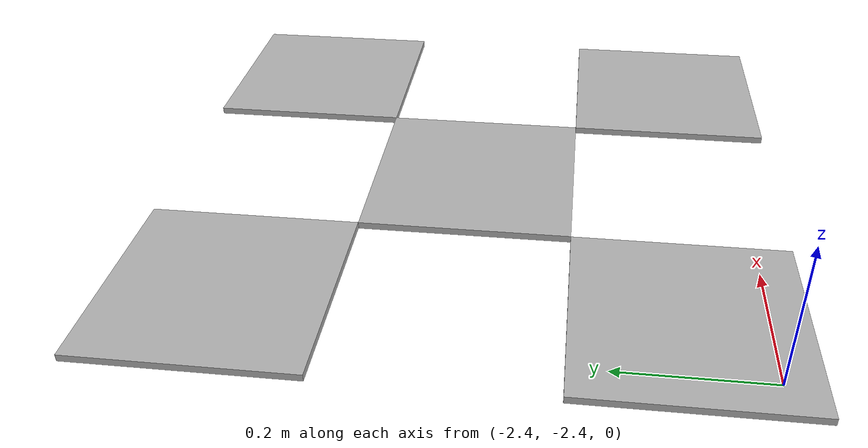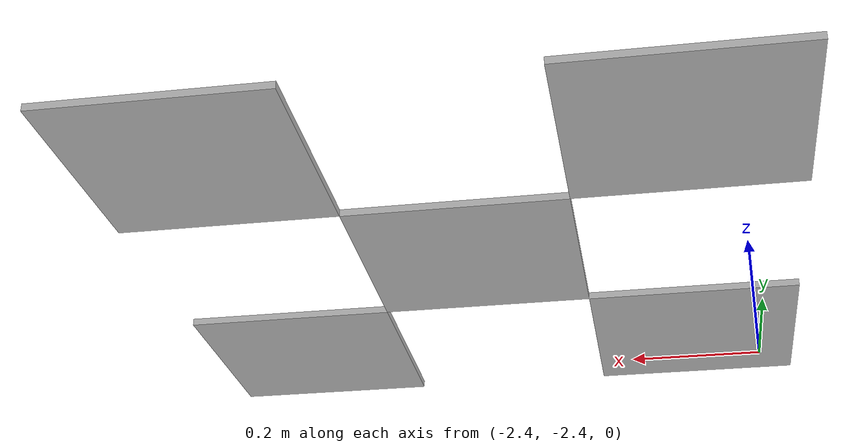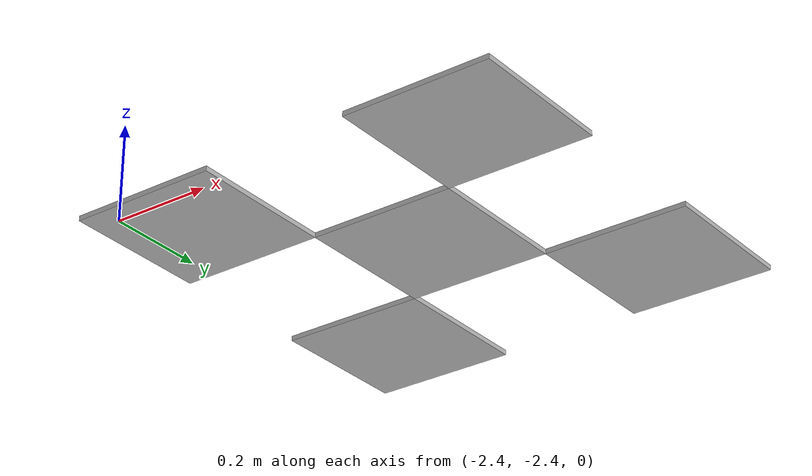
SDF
<?xml version="1.0" ?>
<sdf version="1.4">

	<model name='tag_bundle7'>

		<static>True</static>

		<link name="tag_30">

			<pose>-2 -2 0 0 1.5713 1.5713</pose>

			<inertial>
	        	<mass>0.1</mass>

	        	<inertia>
					<ixx>0.0166667</ixx>
					<ixy>0</ixy>
					<ixz>0</ixz>
					<iyy>0.0166667</iyy>
					<iyz>0</iyz>
					<izz>0.0166667</izz>
        		</inertia>

        		<pose frame=''>0 0 0 0 -0 0</pose>
      		</inertial>

			<pose frame=''>0 0 0 0 -0 0</pose>
			<gravity>1</gravity>
			<self_collide>0</self_collide>
			<kinematic>0</kinematic>
			<enable_wind>0</enable_wind>

			<visual name='visual_30'>
				<pose frame=''>0 0 0 0 -0 0</pose>

		        <geometry>
		        	<box>
		        	<size>0.01 0.3 0.3</size>
		        	</box>
		        </geometry>

		        <material>
		        	<lighting>0</lighting>

		        	<script>
		        		<uri>models://media/materials/scripts/Apriltag.material</uri>
		        		<name>Apriltag/id30</name>
		          	</script>

		        	<shader type='vertex'>
		        		<normal_map>__default__</normal_map>
		          	</shader>

		        	<ambient>0.3 0.3 0.3 1</ambient>
		        	<diffuse>0.7 0.7 0.7 1</diffuse>
		        	<specular>0.01 0.01 0.01 1</specular>
		        	<emissive>0 0 0 1</emissive>
		        </material>

		        <transparency>0</transparency>
		        <cast_shadows>1</cast_shadows>
			</visual>

			<collision name='collision_30'>
				<laser_retro>0</laser_retro>
        		<max_contacts>10</max_contacts>
        		<pose frame=''>0 0 0 0 -0 0</pose>

		        <geometry>
		        	<box>
		        		<size>0.01 0.3 0.3</size>
		        	</box>
		        </geometry>

		        <surface>
		        	<friction>
		            	<ode>
		            		<mu>1</mu>
		            		<mu2>1</mu2>
		            		<fdir1>0 0 0</fdir1>
		            		<slip1>0</slip1>
		            		<slip2>0</slip2>
		            	</ode>

		           		<torsional>
		            		<coefficient>1</coefficient>
	            			<patch_radius>0</patch_radius>
	            			<surface_radius>0</surface_radius>
	            			<use_patch_radius>1</use_patch_radius>

	            			<ode>
		                		<slip>0</slip>
		              		</ode>
		            	</torsional>
		          	</friction>

		        	<bounce>
		            	<restitution_coefficient>0</restitution_coefficient>
		            	<threshold>1e+06</threshold>
		        	</bounce>

		        	<contact>
		            	<collide_without_contact>0</collide_without_contact>
		            	<collide_without_contact_bitmask>1</collide_without_contact_bitmask>
		            	<collide_bitmask>1</collide_bitmask>

		            	<ode>
		            		<soft_cfm>0</soft_cfm>
		            		<soft_erp>0.2</soft_erp>
		            		<kp>1e+13</kp>
		            		<kd>1</kd>
		            		<max_vel>0.01</max_vel>
		            		<min_depth>0</min_depth>
		            	</ode>

			            <bullet>
			            	<split_impulse>1</split_impulse>
			            	<split_impulse_penetration_threshold>-0.01</split_impulse_penetration_threshold>
			            	<soft_cfm>0</soft_cfm>
			            	<soft_erp>0.2</soft_erp>
			            	<kp>1e+13</kp>
			            	<kd>1</kd>
			            </bullet>
		        	</contact>
		        </surface>
		    </collision>
		</link>

		<link name="tag_31">

			<pose>-1.7 -2.3 0 0 1.5713 1.5713</pose>

			<inertial>
	        	<mass>0.1</mass>

	        	<inertia>
					<ixx>0.0166667</ixx>
					<ixy>0</ixy>
					<ixz>0</ixz>
					<iyy>0.0166667</iyy>
					<iyz>0</iyz>
					<izz>0.0166667</izz>
        		</inertia>

        		<pose frame=''>0 0 0 0 -0 0</pose>
      		</inertial>

			<pose frame=''>0 0 0 0 -0 0</pose>
			<gravity>1</gravity>
			<self_collide>0</self_collide>
			<kinematic>0</kinematic>
			<enable_wind>0</enable_wind>

 			<visual name='visual_31'>
				<pose frame=''>0 0 0 0 -0 0</pose>

		        <geometry>
		        	<box>
		        	<size>0.01 0.3 0.3</size>
		        	</box>
		        </geometry>

		        <material>
		        	<lighting>0</lighting>

		        	<script>
		        		<uri>models://media/materials/scripts/Apriltag.material</uri>
		        		<name>Apriltag/id31</name>
		          	</script>

		        	<shader type='vertex'>
		        		<normal_map>__default__</normal_map>
		          	</shader>

		        	<ambient>0.3 0.3 0.3 1</ambient>
		        	<diffuse>0.7 0.7 0.7 1</diffuse>
		        	<specular>0.01 0.01 0.01 1</specular>
		        	<emissive>0 0 0 1</emissive>
		        </material>

		        <transparency>0</transparency>
		        <cast_shadows>1</cast_shadows>
			</visual>

			<collision name='collision_31'>
				<laser_retro>0</laser_retro>
        		<max_contacts>10</max_contacts>
        		<pose frame=''>0 0 0 0 -0 0</pose>

		        <geometry>
		        	<box>
		        		<size>0.01 0.3 0.3</size>
		        	</box>
		        </geometry>

		        <surface>
		        	<friction>
		            	<ode>
		            		<mu>1</mu>
		            		<mu2>1</mu2>
		            		<fdir1>0 0 0</fdir1>
		            		<slip1>0</slip1>
		            		<slip2>0</slip2>
		            	</ode>

		           		<torsional>
		            		<coefficient>1</coefficient>
	            			<patch_radius>0</patch_radius>
	            			<surface_radius>0</surface_radius>
	            			<use_patch_radius>1</use_patch_radius>

	            			<ode>
		                		<slip>0</slip>
		              		</ode>
		            	</torsional>
		          	</friction>

		        	<bounce>
		            	<restitution_coefficient>0</restitution_coefficient>
		            	<threshold>1e+06</threshold>
		        	</bounce>

		        	<contact>
		            	<collide_without_contact>0</collide_without_contact>
		            	<collide_without_contact_bitmask>1</collide_without_contact_bitmask>
		            	<collide_bitmask>1</collide_bitmask>

		            	<ode>
		            		<soft_cfm>0</soft_cfm>
		            		<soft_erp>0.2</soft_erp>
		            		<kp>1e+13</kp>
		            		<kd>1</kd>
		            		<max_vel>0.01</max_vel>
		            		<min_depth>0</min_depth>
		            	</ode>

			            <bullet>
			            	<split_impulse>1</split_impulse>
			            	<split_impulse_penetration_threshold>-0.01</split_impulse_penetration_threshold>
			            	<soft_cfm>0</soft_cfm>
			            	<soft_erp>0.2</soft_erp>
			            	<kp>1e+13</kp>
			            	<kd>1</kd>
			            </bullet>
		        	</contact>
		        </surface>
		    </collision>
		</link>

		<link name="tag_32">

			<pose>-1.7 -1.7 0 0 1.5713 1.5713</pose>

			<inertial>
	        	<mass>0.1</mass>

	        	<inertia>
					<ixx>0.0166667</ixx>
					<ixy>0</ixy>
					<ixz>0</ixz>
					<iyy>0.0166667</iyy>
					<iyz>0</iyz>
					<izz>0.0166667</izz>
        		</inertia>

        		<pose frame=''>0 0 0 0 -0 0</pose>
      		</inertial>

			<pose frame=''>0 0 0 0 -0 0</pose>
			<gravity>1</gravity>
			<self_collide>0</self_collide>
			<kinematic>0</kinematic>
			<enable_wind>0</enable_wind>

			<visual name='visual_32'>
				<pose frame=''>0 0 0 0 -0 0</pose>

		        <geometry>
		        	<box>
		        	<size>0.01 0.3 0.3</size>
		        	</box>
		        </geometry>

		        <material>
		        	<lighting>0</lighting>

		        	<script>
		        		<uri>models://media/materials/scripts/Apriltag.material</uri>
		        		<name>Apriltag/id32</name>
		          	</script>

		        	<shader type='vertex'>
		        		<normal_map>__default__</normal_map>
		          	</shader>

		        	<ambient>0.3 0.3 0.3 1</ambient>
		        	<diffuse>0.7 0.7 0.7 1</diffuse>
		        	<specular>0.01 0.01 0.01 1</specular>
		        	<emissive>0 0 0 1</emissive>
		        </material>

		        <transparency>0</transparency>
		        <cast_shadows>1</cast_shadows>
			</visual>

			<collision name='collision_32'>
				<laser_retro>0</laser_retro>
        		<max_contacts>10</max_contacts>
        		<pose frame=''>0 0 0 0 -0 0</pose>

		        <geometry>
		        	<box>
		        		<size>0.01 0.3 0.3</size>
		        	</box>
		        </geometry>

		        <surface>
		        	<friction>
		            	<ode>
		            		<mu>1</mu>
		            		<mu2>1</mu2>
		            		<fdir1>0 0 0</fdir1>
		            		<slip1>0</slip1>
		            		<slip2>0</slip2>
		            	</ode>

		           		<torsional>
		            		<coefficient>1</coefficient>
	            			<patch_radius>0</patch_radius>
	            			<surface_radius>0</surface_radius>
	            			<use_patch_radius>1</use_patch_radius>

	            			<ode>
		                		<slip>0</slip>
		              		</ode>
		            	</torsional>
		          	</friction>

		        	<bounce>
		            	<restitution_coefficient>0</restitution_coefficient>
		            	<threshold>1e+06</threshold>
		        	</bounce>

		        	<contact>
		            	<collide_without_contact>0</collide_without_contact>
		            	<collide_without_contact_bitmask>1</collide_without_contact_bitmask>
		            	<collide_bitmask>1</collide_bitmask>

		            	<ode>
		            		<soft_cfm>0</soft_cfm>
		            		<soft_erp>0.2</soft_erp>
		            		<kp>1e+13</kp>
		            		<kd>1</kd>
		            		<max_vel>0.01</max_vel>
		            		<min_depth>0</min_depth>
		            	</ode>

			            <bullet>
			            	<split_impulse>1</split_impulse>
			            	<split_impulse_penetration_threshold>-0.01</split_impulse_penetration_threshold>
			            	<soft_cfm>0</soft_cfm>
			            	<soft_erp>0.2</soft_erp>
			            	<kp>1e+13</kp>
			            	<kd>1</kd>
			            </bullet>
		        	</contact>
		        </surface>
		    </collision>
		</link>

		<link name="tag_33">

			<pose>-2.3 -1.7 0 0 1.5713 1.5713</pose>

			<inertial>
	        	<mass>0.1</mass>

	        	<inertia>
					<ixx>0.0166667</ixx>
					<ixy>0</ixy>
					<ixz>0</ixz>
					<iyy>0.0166667</iyy>
					<iyz>0</iyz>
					<izz>0.0166667</izz>
        		</inertia>

        		<pose frame=''>0 0 0 0 -0 0</pose>
      		</inertial>

			<pose frame=''>0 0 0 0 -0 0</pose>
			<gravity>1</gravity>
			<self_collide>0</self_collide>
			<kinematic>0</kinematic>
			<enable_wind>0</enable_wind>

			<visual name='visual_33'>
				<pose frame=''>0 0 0 0 -0 0</pose>

		        <geometry>
		        	<box>
		        	<size>0.01 0.3 0.3</size>
		        	</box>
		        </geometry>

		        <material>
		        	<lighting>0</lighting>

		        	<script>
		        		<uri>models://media/materials/scripts/Apriltag.material</uri>
		        		<name>Apriltag/id33</name>
		          	</script>

		        	<shader type='vertex'>
		        		<normal_map>__default__</normal_map>
		          	</shader>

		        	<ambient>0.3 0.3 0.3 1</ambient>
		        	<diffuse>0.7 0.7 0.7 1</diffuse>
		        	<specular>0.01 0.01 0.01 1</specular>
		        	<emissive>0 0 0 1</emissive>
		        </material>

		        <transparency>0</transparency>
		        <cast_shadows>1</cast_shadows>
			</visual>

			<collision name='collision_33'>
				<laser_retro>0</laser_retro>
        		<max_contacts>10</max_contacts>
        		<pose frame=''>0 0 0 0 -0 0</pose>

		        <geometry>
		        	<box>
		        		<size>0.01 0.3 0.3</size>
		        	</box>
		        </geometry>

		        <surface>
		        	<friction>
		            	<ode>
		            		<mu>1</mu>
		            		<mu2>1</mu2>
		            		<fdir1>0 0 0</fdir1>
		            		<slip1>0</slip1>
		            		<slip2>0</slip2>
		            	</ode>

		           		<torsional>
		            		<coefficient>1</coefficient>
	            			<patch_radius>0</patch_radius>
	            			<surface_radius>0</surface_radius>
	            			<use_patch_radius>1</use_patch_radius>

	            			<ode>
		                		<slip>0</slip>
		              		</ode>
		            	</torsional>
		          	</friction>

		        	<bounce>
		            	<restitution_coefficient>0</restitution_coefficient>
		            	<threshold>1e+06</threshold>
		        	</bounce>

		        	<contact>
		            	<collide_without_contact>0</collide_without_contact>
		            	<collide_without_contact_bitmask>1</collide_without_contact_bitmask>
		            	<collide_bitmask>1</collide_bitmask>

		            	<ode>
		            		<soft_cfm>0</soft_cfm>
		            		<soft_erp>0.2</soft_erp>
		            		<kp>1e+13</kp>
		            		<kd>1</kd>
		            		<max_vel>0.01</max_vel>
		            		<min_depth>0</min_depth>
		            	</ode>

			            <bullet>
			            	<split_impulse>1</split_impulse>
			            	<split_impulse_penetration_threshold>-0.01</split_impulse_penetration_threshold>
			            	<soft_cfm>0</soft_cfm>
			            	<soft_erp>0.2</soft_erp>
			            	<kp>1e+13</kp>
			            	<kd>1</kd>
			            </bullet>
		        	</contact>
		        </surface>
		    </collision>
		</link>

		<link name="tag_34">

			<pose>-2.3 -2.3 0 0 1.5713 1.5713</pose>

			<inertial>
	        	<mass>0.1</mass>

	        	<inertia>
					<ixx>0.0166667</ixx>
					<ixy>0</ixy>
					<ixz>0</ixz>
					<iyy>0.0166667</iyy>
					<iyz>0</iyz>
					<izz>0.0166667</izz>
        		</inertia>

        		<pose frame=''>0 0 0 0 -0 0</pose>
      		</inertial>

			<pose frame=''>0 0 0 0 -0 0</pose>
			<gravity>1</gravity>
			<self_collide>0</self_collide>
			<kinematic>0</kinematic>
			<enable_wind>0</enable_wind>

			<visual name='visual_34'>
				<pose frame=''>0 0 0 0 -0 0</pose>

		        <geometry>
		        	<box>
		        	<size>0.01 0.3 0.3</size>
		        	</box>
		        </geometry>

		        <material>
		        	<lighting>0</lighting>

		        	<script>
		        		<uri>models://media/materials/scripts/Apriltag.material</uri>
		        		<name>Apriltag/id34</name>
		          	</script>

		        	<shader type='vertex'>
		        		<normal_map>__default__</normal_map>
		          	</shader>

		        	<ambient>0.3 0.3 0.3 1</ambient>
		        	<diffuse>0.7 0.7 0.7 1</diffuse>
		        	<specular>0.01 0.01 0.01 1</specular>
		        	<emissive>0 0 0 1</emissive>
		        </material>

		        <transparency>0</transparency>
		        <cast_shadows>1</cast_shadows>
			</visual>

			<collision name='collision_34'>
				<laser_retro>0</laser_retro>
        		<max_contacts>10</max_contacts>
        		<pose frame=''>0 0 0 0 -0 0</pose>

		        <geometry>
		        	<box>
		        		<size>0.01 0.3 0.3</size>
		        	</box>
		        </geometry>

		        <surface>
		        	<friction>
		            	<ode>
		            		<mu>1</mu>
		            		<mu2>1</mu2>
		            		<fdir1>0 0 0</fdir1>
		            		<slip1>0</slip1>
		            		<slip2>0</slip2>
		            	</ode>

		           		<torsional>
		            		<coefficient>1</coefficient>
	            			<patch_radius>0</patch_radius>
	            			<surface_radius>0</surface_radius>
	            			<use_patch_radius>1</use_patch_radius>

	            			<ode>
		                		<slip>0</slip>
		              		</ode>
		            	</torsional>
		          	</friction>

		        	<bounce>
		            	<restitution_coefficient>0</restitution_coefficient>
		            	<threshold>1e+06</threshold>
		        	</bounce>

		        	<contact>
		            	<collide_without_contact>0</collide_without_contact>
		            	<collide_without_contact_bitmask>1</collide_without_contact_bitmask>
		            	<collide_bitmask>1</collide_bitmask>

		            	<ode>
		            		<soft_cfm>0</soft_cfm>
		            		<soft_erp>0.2</soft_erp>
		            		<kp>1e+13</kp>
		            		<kd>1</kd>
		            		<max_vel>0.01</max_vel>
		            		<min_depth>0</min_depth>
		            	</ode>

			            <bullet>
			            	<split_impulse>1</split_impulse>
			            	<split_impulse_penetration_threshold>-0.01</split_impulse_penetration_threshold>
			            	<soft_cfm>0</soft_cfm>
			            	<soft_erp>0.2</soft_erp>
			            	<kp>1e+13</kp>
			            	<kd>1</kd>
			            </bullet>
		        	</contact>
		        </surface>
		    </collision>
		</link>

		<joint name = "joint_1" type="fixed">
			<axis xyz="0 0 0" />
			<parent link="tag_30" />
			<child link="tag_31" />
	    </joint>

	    <joint name = "joint_2" type="fixed">
			<axis xyz="0 0 0" />
			<parent link="tag_30" />
			<child link="tag_32" />
	    </joint>

	    <joint name = "joint_3" type="fixed">
			<axis xyz="0 0 0" />
			<parent link="tag_30" />
			<child link="tag_33" />
	    </joint>

	    <joint name = "joint_4" type="fixed">
			<axis xyz="0 0 0" />
			<parent link="tag_30" />
			<child link="tag_34" />
	    </joint>

	</model>

</sdf>
